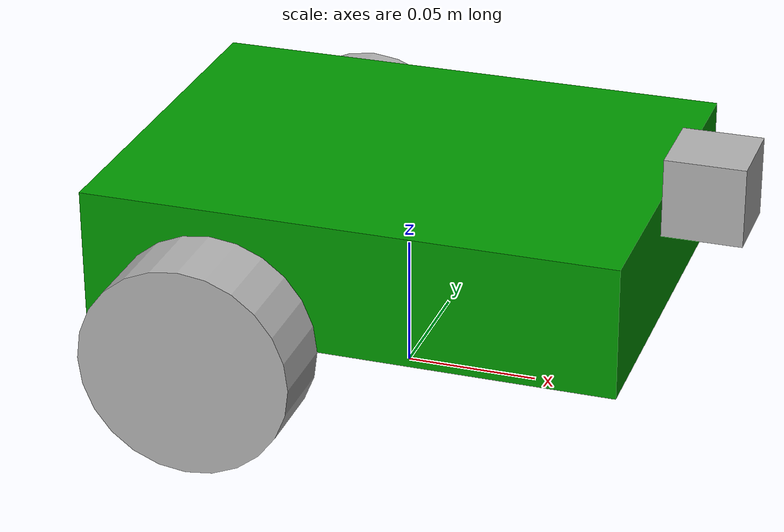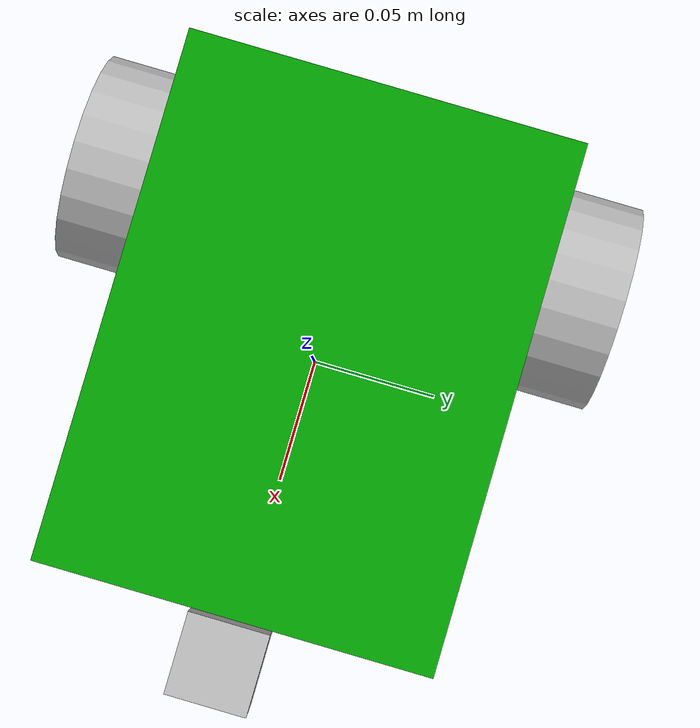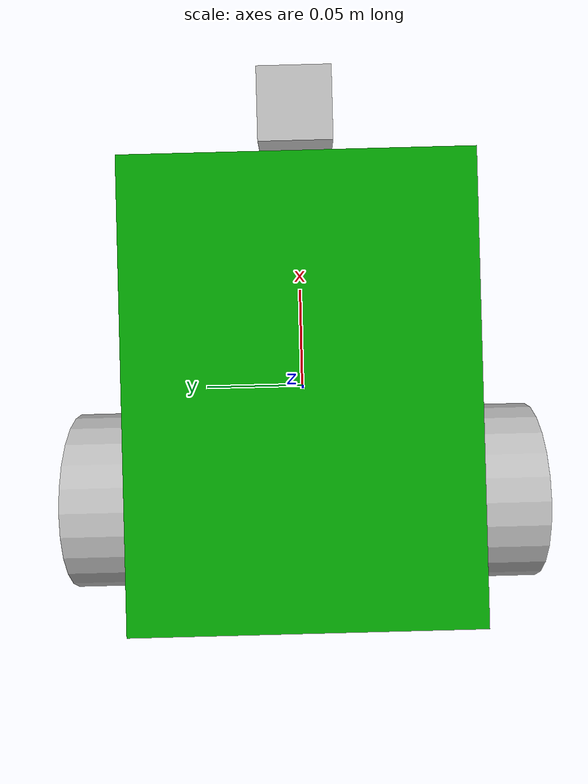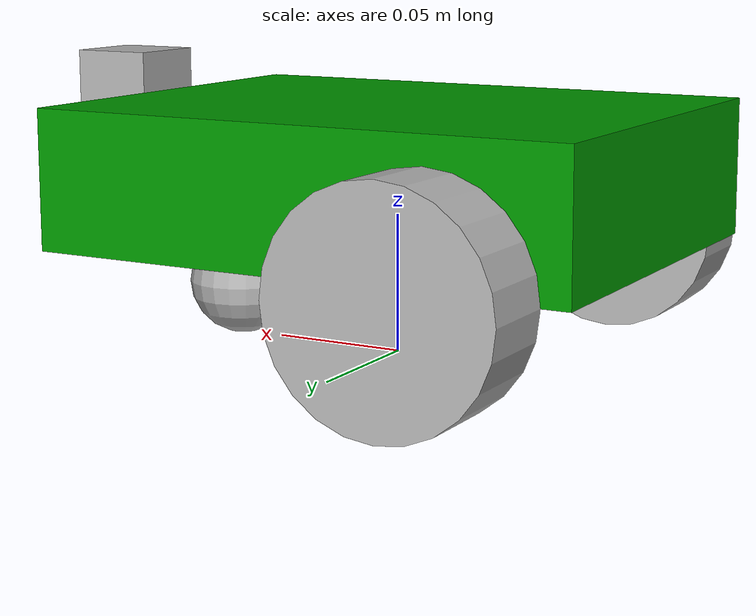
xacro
<?xml version="1.0"?>
<robot name="my_robot" xmlns:xacro="http://www.ros.org/wiki/xacro">

    <xacro:property name="base_length" value="0.2" />
    <xacro:property name="base_width" value="0.15" />
    <xacro:property name="base_height" value="0.05" />
    <xacro:property name="wheel_radius" value="0.04" />
    <xacro:property name="wheel_length" value="0.03" />

    <xacro:property name="camera_side_length" value="0.03" />

    <xacro:include filename="$(find my_agent_description)/urdf/robot/common_properties.xacro" />
    <xacro:include filename="$(find my_agent_description)/urdf/robot/mobile_base_gazebo.xacro" />

    <material name="green">
        <color rgba="0 0.6 0 1" />
    </material>

    <material name="gray">
        <color rgba="0.7 0.7 0.7 1" />
    </material>

    <link name="camera_link">
        <xacro:box_inertia m="0.01" x="${camera_side_length}" y="${camera_side_length}"
        z="${camera_side_length}" o_xyz="${camera_side_length / 2} 0 0" o_rpy="0 0 0" />

        <visual>
            <geometry>
                <box size="${camera_side_length} ${camera_side_length} ${camera_side_length}" />
            </geometry>
            <origin xyz="${camera_side_length / 2} 0 0" rpy="0 0 0" />
            <material name="gray" />
        </visual>
    </link>

    <link name="base_link">
        <xacro:box_inertia m="5.0" x="${base_length}" y="${base_width}" z="${base_height}"
        o_xyz="0 0 ${base_height / 2.0}" o_rpy="0 0 0" />

        <collision>
            <origin xyz="0 0 ${base_height / 2.0}" rpy="0 0 0" />
            <geometry>
                <box size="${base_length} ${base_width} ${base_height}" />
            </geometry>
        </collision>

        <visual>
            <geometry>
                <box size="${base_length} ${base_width} ${base_height}" />
            </geometry>
            <origin xyz="0 0 ${base_height / 2.0}" rpy="0 0 0" />
            <material name="green" />
        </visual>

    </link>

    <link name="right_wheel_link">
        <xacro:cylinder_inertia m="1.0" r="${wheel_radius}" l="${wheel_length}"
        o_xyz="0 0 0" o_rpy="${pi / 2.0} 0 0" />

        <collision>
            <origin xyz="0 0 0" rpy="0 0 0" />
            <geometry>
                <sphere radius="${wheel_radius}" />
            </geometry>
        </collision>

        <visual>
            <geometry>
                <cylinder radius="${wheel_radius}" length="${wheel_length}" />
            </geometry>
            <origin xyz="0 0 0" rpy="${pi / 2.0} 0 0" />
            <material name="gray" />
        </visual>
    </link>

    <link name="left_wheel_link">
        <xacro:cylinder_inertia m="1.0" r="${wheel_radius}" l="${wheel_length}"
        o_xyz="0 0 0" o_rpy="${pi / 2.0} 0 0" />

        <collision>
            <origin xyz="0 0 0" rpy="0 0 0" />
            <geometry>
                <sphere radius="${wheel_radius}" />
            </geometry>
        </collision>

        <visual>
            <geometry>
                <cylinder radius="${wheel_radius}" length="${wheel_length}" />
            </geometry>
            <origin xyz="0 0 0" rpy="${-pi / 2.0} 0 0" />
            <material name="gray" />
        </visual>
    </link>

    <link name="caster_wheel_link">
        <xacro:sphere_inertia m="0.5" r="${wheel_radius / 2.0}"  o_xyz="0 0 0" o_rpy="0 0 0" />

        <collision>
            <origin xyz="0 0 0" rpy="0 0 0" />
            <geometry>
                <sphere radius="${wheel_radius / 2.0}" />
            </geometry>
        </collision>

        <visual>
            <geometry>
                <sphere radius="${wheel_radius / 2.0}" />
            </geometry>
            <origin xyz="0 0 0" rpy="0 0 0 " />
            <material name="gray" />
        </visual>
    </link>

    <link name="base_footprint" />

    <joint name="base_camera_joint" type="fixed">
        <parent link="base_link" />
        <child link="camera_link" />
        <origin xyz="${base_length / 2} 0 ${base_height}" rpy="0 0 0" />
    </joint>

    <joint name="base_right_wheel_joint" type="continuous">
        <parent link="base_link" />
        <child link="right_wheel_link" />
        <origin xyz="${-base_length / 4.0} ${-(base_width + wheel_length) /
            2.0} 0" rpy="0 0 0" />
        <axis xyz="0 1 0" />
    </joint>

    <joint name="base_left_wheel_joint" type="continuous">
        <parent link="base_link" />
        <child link="left_wheel_link" />
        <origin xyz="${-base_length / 4.0} ${(base_width + wheel_length) /
            2.0} 0" rpy="0 0 0" />
        <axis xyz="0 1 0" />
    </joint>

    <joint name="base_caster_wheel_joint" type="fixed">
        <parent link="base_link" />
        <child link="caster_wheel_link" />
        <origin xyz="${base_length / 3.0} 0 ${-wheel_radius / 2.0}" rpy="0 0 0" />
    </joint>

    <joint name="base_joint" type="fixed">
        <parent link="base_footprint" />
        <child link="base_link" />
        <origin xyz="0 0 ${wheel_radius}" rpy="0 0 0" />
    </joint>

    <gazebo>
        <plugin filename="gz-sim-pose-publisher-system"
            name="gz::sim::systems::PosePublisher">

            <publish_model_pose>true</publish_model_pose>
            <publish_link_pose>false</publish_link_pose>
            <publish_sensor_pose>false</publish_sensor_pose>
            <publish_collision_pose>false</publish_collision_pose>
            <publish_visual_pose>false</publish_visual_pose>

            <update_frequency>50</update_frequency>

            <use_pose_vector_msg>false</use_pose_vector_msg>

        </plugin>
    </gazebo>

</robot>

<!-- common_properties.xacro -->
<robot xmlns:xacro="http://www.ros.org/wiki/xacro">
    <!-- Box Inertia Macro -->
    <xacro:macro name="box_inertia" params="m x y z o_xyz o_rpy">
    <inertial>
        <mass value="${m}" />
        <origin xyz="${o_xyz}" rpy="${o_rpy}" />
        <inertia ixx="${(m/12) * (y*y + z*z)}" ixy="0" ixz="0"
                iyy="${(m/12) * (x*x + z*z)}" iyz="0"
                izz="${(m/12) * (x*x + y*y)}" />
    </inertial>
    </xacro:macro>

    <!-- Cylinder Inertia Macro -->
    <xacro:macro name="cylinder_inertia" params="m r l o_xyz o_rpy">
    <inertial>
        <mass value="${m}" />
        <origin xyz="${o_xyz}" rpy="${o_rpy}" />
        <inertia ixx="${(m/12) * (3*r*r + l*l)}" ixy="0" ixz="0"
                iyy="${(m/12) * (3*r*r + l*l)}" iyz="0"
                izz="${(m/2) * (r*r)}" />
    </inertial>
    </xacro:macro>

    <!-- Sphere Inertia Macro -->
    <xacro:macro name="sphere_inertia" params="m r o_xyz o_rpy">
    <inertial>
        <mass value="${m}" />
        <origin xyz="${o_xyz}" rpy="${o_rpy}" />
        <inertia ixx="${(2/5) * m * r * r}" ixy="0" ixz="0"
                iyy="${(2/5) * m * r * r}" iyz="0"
                izz="${(2/5) * m * r * r}" />
    </inertial>
    </xacro:macro>
</robot>
